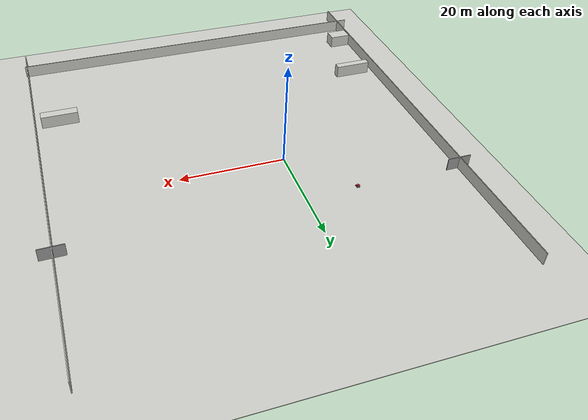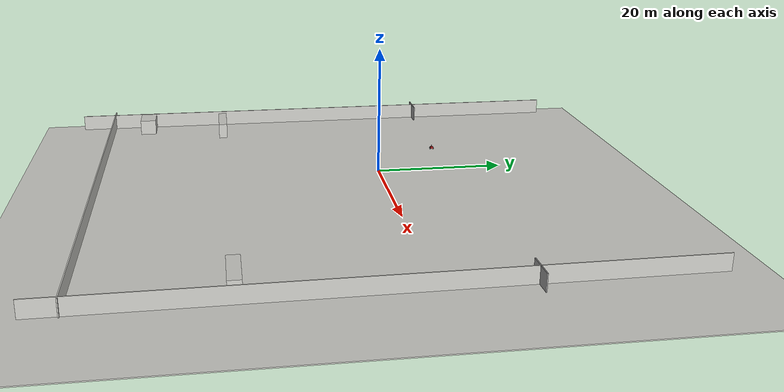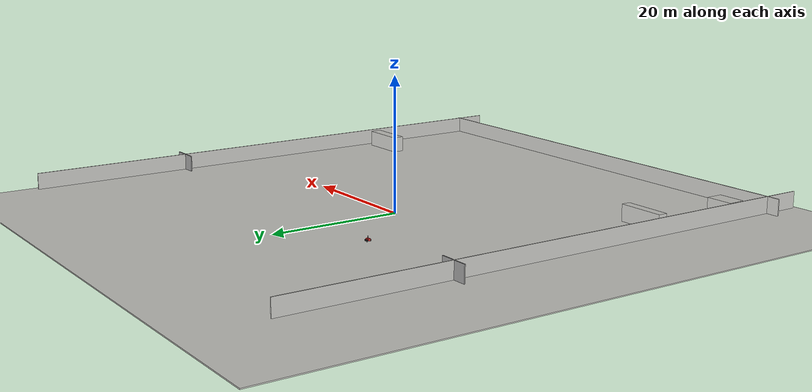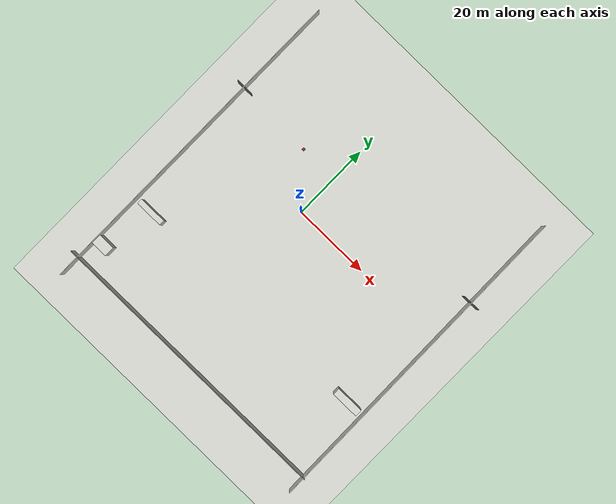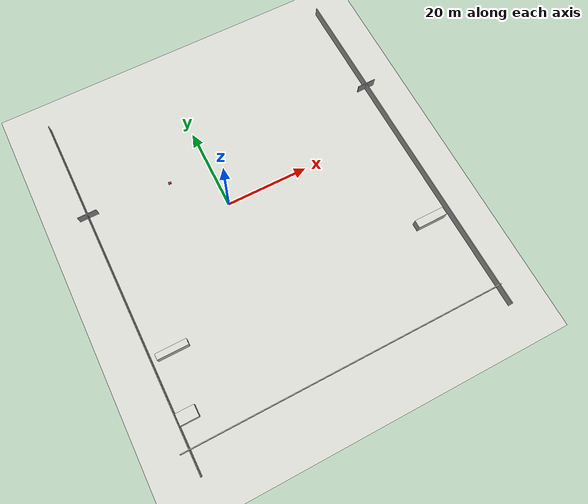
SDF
<sdf version="1.7">
 <world name="default">
  <light name="sun" type="directional">
   <pose>0 0 10 0 -0 0</pose>
   <diffuse>0.8 0.8 0.8 1</diffuse>
   <specular>0.2 0.2 0.2 1</specular>
   <attenuation>
    <range>1000</range>
    <constant>0.9</constant>
    <linear>0.01</linear>
    <quadratic>0.001</quadratic>
   </attenuation>
   <direction>-0.5 0.1 -0.9</direction>
   <spot><inner_angle>0</inner_angle><outer_angle>0</outer_angle><falloff>0</falloff></spot>
  </light>
  <plugin name="ros_interface_plugin" filename="librotors_gazebo_ros_interface_plugin.so"/>
  <model name="top_wall">
   <pose>11.0476 91.0617 -2.5 1.5708 -0 0</pose>
   <link name="Wall_39">
    <collision name="Wall_39_Collision">
     <geometry><box><size>400 0.15 400</size></box></geometry>
     <pose>0 0 1.6 0 -0 0</pose>
    </collision>
    <visual name="Wall_39_Visual">
     <pose>0 0 1.6 0 -0 0</pose>
     <geometry><box><size>400 0.15 400</size></box></geometry>
     <material>
      <script><uri>file://media/materials/scripts/gazebo.material</uri><name>Gazebo/CeilingTiled</name></script>
      <ambient>1 1 1 1</ambient>
     </material>
     <meta><layer>0</layer></meta>
    </visual>
   </link>
   <static>1</static>
  </model>
  <model name="block_1">
   <pose>18.2331 -24.2127 0 0 -0 0</pose>
   <link name="Wall_7">
    <collision name="Wall_7_Collision">
     <geometry><box><size>1.85 7.25 2.5</size></box></geometry>
     <pose>0 0 1.25 0 -0 0</pose>
    </collision>
    <visual name="Wall_7_Visual">
     <pose>0 0 1.25 0 -0 0</pose>
     <geometry><box><size>1.85 7.25 2.5</size></box></geometry>
     <material>
      <script><uri>file://media/materials/scripts/gazebo.material</uri><name>Gazebo/CeilingTiled</name></script>
      <ambient>1 1 1 1</ambient>
     </material>
     <meta><layer>0</layer></meta>
    </visual>
    <pose>20.5527 -0.076909 0 0 -0 -1.5708</pose>
   </link>
   <static>1</static>
  </model>
  <model name="block_2">
   <pose>-45.5303 -24.5668 0 0 -0 0</pose>
   <link name="Wall_7">
    <collision name="Wall_7_Collision">
     <geometry><box><size>1.4 7.25 2.5</size></box></geometry>
     <pose>0 0 1.25 0 -0 0</pose>
    </collision>
    <visual name="Wall_7_Visual">
     <pose>0 0 1.25 0 -0 0</pose>
     <geometry><box><size>1.4 7.25 2.5</size></box></geometry>
     <material>
      <script><uri>file://media/materials/scripts/gazebo.material</uri><name>Gazebo/CeilingTiled</name></script>
      <ambient>1 1 1 1</ambient>
     </material>
     <meta><layer>0</layer></meta>
    </visual>
    <pose>20.5527 -0.076909 0 0 -0 -1.5708</pose>
   </link>
   <static>1</static>
  </model>
  <model name="block_3">
   <pose>-48.0998 -37.9492 0 0 -0 0</pose>
   <link name="Wall_7">
    <collision name="Wall_7_Collision">
     <geometry><box><size>2.65 4.25 2.5</size></box></geometry>
     <pose>0 0 1.25 0 -0 0</pose>
    </collision>
    <visual name="Wall_7_Visual">
     <pose>0 0 1.25 0 -0 0</pose>
     <geometry><box><size>2.65 4.25 2.5</size></box></geometry>
     <material>
      <script><uri>file://media/materials/scripts/gazebo.material</uri><name>Gazebo/CeilingTiled</name></script>
      <ambient>1 1 1 1</ambient>
     </material>
     <meta><layer>0</layer></meta>
    </visual>
    <pose>20.5527 -0.076909 0 0 -0 -1.5708</pose>
   </link>
   <static>1</static>
  </model>
  <model name="wall0">
   <pose>-14.3855 -44.093 0 0 -0 0</pose>
   <link name="Wall_7">
    <collision name="Wall_7_Collision">
     <geometry><box><size>0.15 76.25 2.5</size></box></geometry>
     <pose>0 0 1.25 0 -0 0</pose>
    </collision>
    <visual name="Wall_7_Visual">
     <pose>0 0 1.25 0 -0 0</pose>
     <geometry><box><size>0.15 76.25 2.5</size></box></geometry>
     <material>
      <script><uri>file://media/materials/scripts/gazebo.material</uri><name>Gazebo/CeilingTiled</name></script>
      <ambient>1 1 1 1</ambient>
     </material>
     <meta><layer>0</layer></meta>
    </visual>
    <pose>20.5527 -0.076909 0 0 -0 -1.5708</pose>
   </link>
   <static>1</static>
  </model>
  <model name="wall1">
   <pose>22.9398 -6.05631 0 0 -0 0.01</pose>
   <link name="Wall_5">
    <collision name="Wall_5_Collision">
     <geometry><box><size>4.5 0.15 2.5</size></box></geometry>
     <pose>0 0.2 1.25 0 -0 0</pose>
    </collision>
    <visual name="Wall_5_Visual">
     <pose>0 0.2 1.25 0 -0 0</pose>
     <geometry><box><size>4.5 0.15 2.5</size></box></geometry>
     <material>
      <script><uri>file://media/materials/scripts/gazebo.material</uri><name>Gazebo/Grey</name></script>
      <ambient>1 1 1 1</ambient>
     </material>
     <meta><layer>0</layer></meta>
    </visual>
    <pose>20.6476 18.1269 0 0 -0 0</pose>
   </link>
   <link name="Wall_7">
    <collision name="Wall_7_Collision">
     <geometry><box><size>86.25 0.15 2.5</size></box></geometry>
     <pose>-0.2 0 1.25 0 -0 0</pose>
    </collision>
    <visual name="Wall_7_Visual">
     <pose>-0.2 0 1.25 0 -0 0</pose>
     <geometry><box><size>86.25 0.15 2.5</size></box></geometry>
     <material>
      <script><uri>file://media/materials/scripts/gazebo.material</uri><name>Gazebo/CeilingTiled</name></script>
      <ambient>1 1 1 1</ambient>
     </material>
     <meta><layer>0</layer></meta>
    </visual>
    <pose>20.5527 -0.076909 0 0 -0 -1.5708</pose>
   </link>
   <static>1</static>
  </model>
  <model name="wall2">
   <pose>-50.4579 -6.61501 0 0 -0 0</pose>
   <link name="Wall_5">
    <collision name="Wall_5_Collision">
     <geometry><box><size>4.5 0.15 2.5</size></box></geometry>
     <pose>0 0 1.25 0 -0 0</pose>
    </collision>
    <visual name="Wall_5_Visual">
     <pose>0 0 1.25 0 -0 0</pose>
     <geometry><box><size>4.5 0.15 2.5</size></box></geometry>
     <material>
      <script><uri>file://media/materials/scripts/gazebo.material</uri><name>Gazebo/Grey</name></script>
      <ambient>1 1 1 1</ambient>
     </material>
     <meta><layer>0</layer></meta>
    </visual>
    <pose>20.6476 18.1269 0 0 -0 0</pose>
   </link>
   <link name="Wall_7">
    <collision name="Wall_7_Collision">
     <geometry><box><size>86.25 0.15 2.5</size></box></geometry>
     <pose>0 0 1.25 0 -0 0</pose>
    </collision>
    <visual name="Wall_7_Visual">
     <pose>0 0 1.25 0 -0 0</pose>
     <geometry><box><size>86.25 0.15 2.5</size></box></geometry>
     <material>
      <script><uri>file://media/materials/scripts/gazebo.material</uri><name>Gazebo/CeilingTiled</name></script>
      <ambient>1 1 1 1</ambient>
     </material>
     <meta><layer>0</layer></meta>
    </visual>
    <pose>20.5527 -0.076909 0 0 -0 -1.5708</pose>
   </link>
   <static>1</static>
  </model>
  <spherical_coordinates>
   <surface_model>EARTH_WGS84</surface_model>
   <latitude_deg>47.3667</latitude_deg>
   <longitude_deg>8.55</longitude_deg>
   <elevation>500</elevation>
   <heading_deg>0</heading_deg>
  </spherical_coordinates>
  <physics type="ode">
   <ode>
    <solver>
     <type>quick</type>
     <iters>1000</iters>
     <sor>1.3</sor>
     <use_dynamic_moi_rescaling>0</use_dynamic_moi_rescaling>
    </solver>
    <constraints>
     <cfm>0</cfm>
     <erp>0.2</erp>
     <contact_max_correcting_vel>100</contact_max_correcting_vel>
     <contact_surface_layer>0.001</contact_surface_layer>
    </constraints>
   </ode>
   <max_step_size>0.001</max_step_size>
   <real_time_factor>1</real_time_factor>
   <real_time_update_rate>1000</real_time_update_rate>
   <gravity>0 0 -9.8</gravity>
  </physics>
  <gravity>0 0 -9.8</gravity>
  <magnetic_field>6e-06 2.3e-05 -4.2e-05</magnetic_field>
  <atmosphere type="adiabatic"/>
  <scene><ambient>0.4 0.4 0.4 1</ambient><background>0.7 0.7 0.7 1</background><shadows>1</shadows></scene>
  <model name="camera">
   <link name="camera">
    <inertial>
     <mass>1e-05</mass>
     <inertia><ixx>1e-06</ixx><ixy>0</ixy><ixz>0</ixz><iyy>1e-06</iyy><iyz>0</iyz><izz>1e-06</izz></inertia>
    </inertial>
    <collision name="camera_collision"><geometry><box><size>0.001 0.001 0.001</size></box></geometry></collision>
    <visual name="camera_visual"><geometry><box><size>0.001 0.001 0.001</size></box></geometry></visual>
    <sensor name="camera" type="camera">
     <update_rate>15</update_rate>
     <camera name="head">
      <horizontal_fov>2</horizontal_fov>
      <image><width>320</width><height>180</height><format>R8G8B8</format></image>
      <clip><near>0.1</near><far>200</far></clip>
     </camera>
     <plugin name="camera_controller" filename="libgazebo_ros_camera.so">
      <alwaysOn>1</alwaysOn>
      <updateRate>0.0</updateRate>
      <cameraName>camera</cameraName>
      <imageTopicName>image</imageTopicName>
      <cameraInfoTopicName>camera_info</cameraInfoTopicName>
      <frameName>camera</frameName>
      <hackBaseline>0.0</hackBaseline>
      <distortionK1>0.0</distortionK1>
      <distortionK2>0.0</distortionK2>
      <distortionK3>0.0</distortionK3>
      <distortionT1>0.0</distortionT1>
      <distortionT2>0.0</distortionT2>
      <robotNamespace>/</robotNamespace>
     </plugin>
    </sensor>
   </link>
   <pose>-10 11 0.74949 -2e-06 2e-06 -0</pose>
  </model>
  <model name="robot">
   <link name="base_origin">
    <inertial>
     <pose>0 0 -0.5125 0 -0 0</pose>
     <mass>6e-05</mass>
     <inertia>
      <ixx>9.94687e-06</ixx>
      <ixy>0</ixy>
      <ixz>0</ixz>
      <iyy>9.04688e-06</iyy>
      <iyz>-1.58819e-23</iyz>
      <izz>1.01e-05</izz>
     </inertia>
    </inertial>
    <visual name="base_origin_fixed_joint_lump__base_link_visual">
     <pose>0 0 -0.5 0 -0 0</pose>
     <geometry><box><size>0.6 0.4 0.3</size></box></geometry>
     <material>
      <script><name>Gazebo/Red</name><uri>file://media/materials/scripts/gazebo.material</uri></script>
     </material>
    </visual>
    <visual name="base_origin_fixed_joint_lump__left_front_wheel_visual_1">
     <pose>0.2 -0.25 -0.6 1.57 -0 0</pose>
     <geometry><cylinder><length>0.1</length><radius>0.15</radius></cylinder></geometry>
     <material>
      <script><name>Gazebo/Black</name><uri>file://media/materials/scripts/gazebo.material</uri></script>
     </material>
    </visual>
    <visual name="base_origin_fixed_joint_lump__left_rear_wheel_visual_2">
     <pose>-0.2 -0.25 -0.6 1.57 -0 0</pose>
     <geometry><cylinder><length>0.1</length><radius>0.15</radius></cylinder></geometry>
     <material>
      <script><name>Gazebo/Black</name><uri>file://media/materials/scripts/gazebo.material</uri></script>
     </material>
    </visual>
    <visual name="base_origin_fixed_joint_lump__right_rear_wheel_visual_3">
     <pose>-0.2 0.25 -0.6 -1.57 0 0</pose>
     <geometry><cylinder><length>0.1</length><radius>0.15</radius></cylinder></geometry>
     <material>
      <script><name>Gazebo/Black</name><uri>file://media/materials/scripts/gazebo.material</uri></script>
     </material>
    </visual>
    <visual name="base_origin_fixed_joint_lump__right_front_wheel_visual_4">
     <pose>0.2 0.25 -0.6 -1.57 0 0</pose>
     <geometry><cylinder><length>0.1</length><radius>0.15</radius></cylinder></geometry>
     <material>
      <script><name>Gazebo/Black</name><uri>file://media/materials/scripts/gazebo.material</uri></script>
     </material>
    </visual>
    <visual name="base_origin_fixed_joint_lump__lidar_holder_visual_5">
     <pose>0 0 -0.175 0 -0 0</pose>
     <geometry><cylinder><length>0.35</length><radius>0.03</radius></cylinder></geometry>
     <material>
      <script><name>Gazebo/Black</name><uri>file://media/materials/scripts/gazebo.material</uri></script>
     </material>
    </visual>
   </link>
   <pose>-10 11 0.74999 0 -0 0</pose>
  </model>
 </world>
</sdf>
